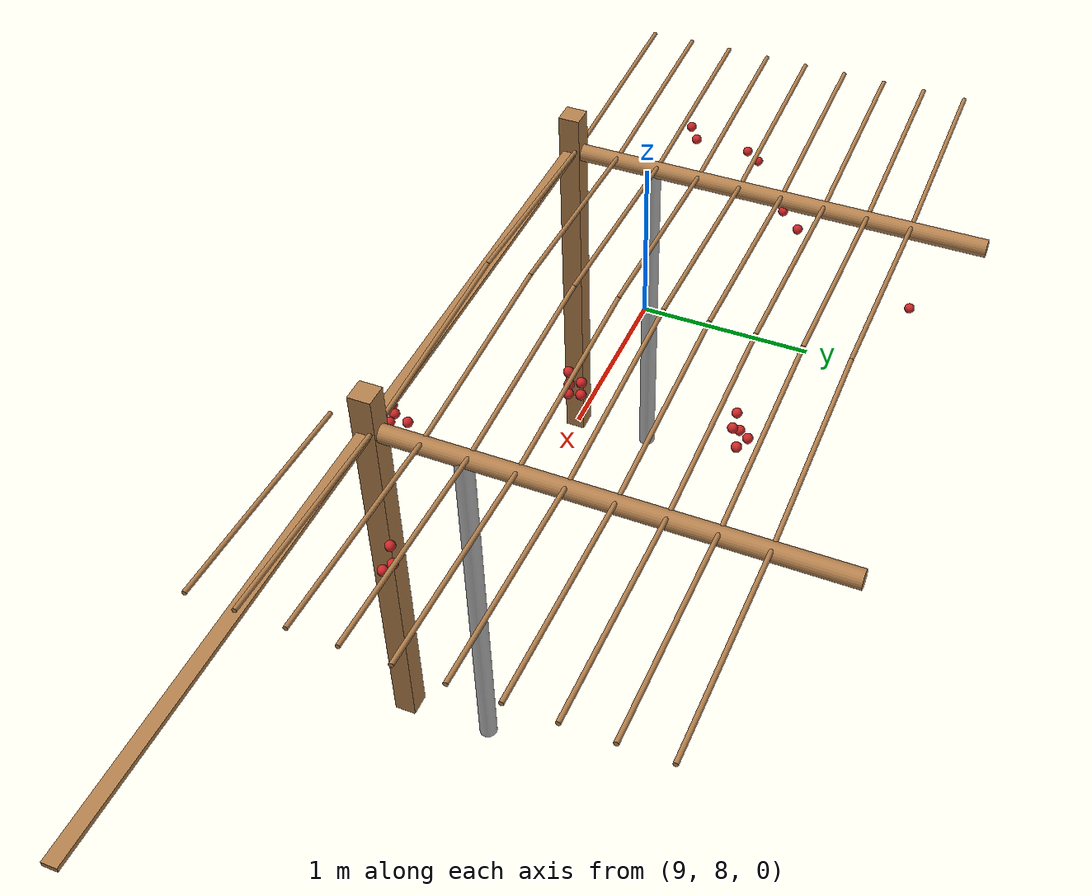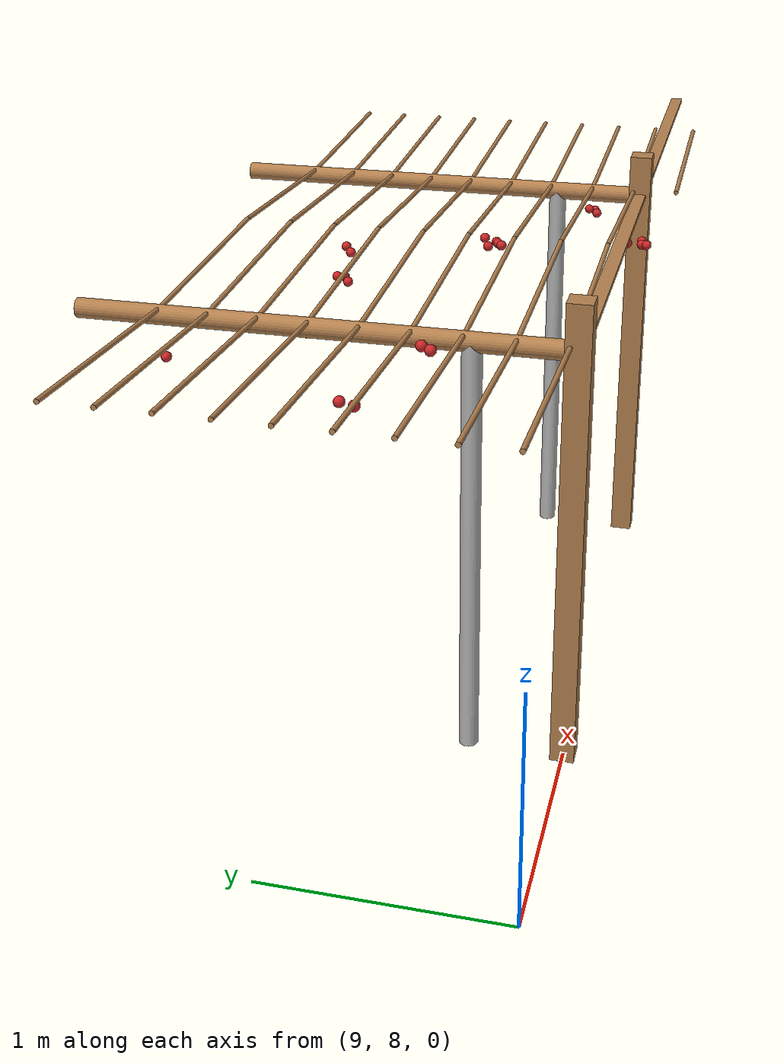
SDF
<sdf version="1.4">
 <model name="pergola">
  <include><name>post_59</name><pose>10.0 8.0 0 0 0 0</pose><uri>model://post</uri></include>
  <include><name>post_70</name><pose>12.0 8.0 0 0 0 0</pose><uri>model://post</uri></include>
  <link name="beam_59">
   <pose>11.0 8.0 1.81 0 0 0</pose>
   <collision name="collision"><geometry><box><size>2.0 0.06 0.02</size></box></geometry></collision>
   <visual name="visual">
    <geometry><box><size>2.0 0.06 0.02</size></box></geometry>
    <material><script><name>Gazebo/Wood</name></script></material>
   </visual>
   <inertial>
    <mass>5</mass>
    <inertia>
     <ixx>0.0016666666666666668</ixx>
     <ixy>0.0</ixy>
     <ixz>0.0</ixz>
     <iyy>1.6681666666666664</iyy>
     <iyz>0.0</iyz>
     <izz>1.6668333333333332</izz>
    </inertia>
   </inertial>
  </link>
  <link name="beam_70">
   <pose>13.0 8.0 1.81 0 0 0</pose>
   <collision name="collision"><geometry><box><size>2.0 0.06 0.02</size></box></geometry></collision>
   <visual name="visual">
    <geometry><box><size>2.0 0.06 0.02</size></box></geometry>
    <material><script><name>Gazebo/Wood</name></script></material>
   </visual>
   <inertial>
    <mass>5</mass>
    <inertia>
     <ixx>0.0016666666666666668</ixx>
     <ixy>0.0</ixy>
     <ixz>0.0</ixz>
     <iyy>1.6681666666666664</iyy>
     <iyz>0.0</iyz>
     <izz>1.6668333333333332</izz>
    </inertia>
   </inertial>
  </link>
  <include><name>tree_54</name><pose>10.0 8.4 0 0 0 0</pose><uri>model://tree_trunk</uri></include>
  <include><name>tree_64</name><pose>12.0 8.4 0 0 0 0</pose><uri>model://tree_trunk</uri></include>
  <link name="baseBranch_54">
   <pose>10.0 9.0 1.8 1.5707963267948966 0 0</pose>
   <collision name="collision">
    <geometry><cylinder><radius>0.04</radius><length>1.94</length></cylinder></geometry>
   </collision>
   <visual name="visual">
    <geometry><cylinder><radius>0.04</radius><length>1.94</length></cylinder></geometry>
    <material><script><name>Gazebo/WoodFloor</name></script></material>
   </visual>
   <inertial>
    <mass>10</mass>
    <inertia>
     <ixx>3.140333333333333</ixx>
     <ixy>0.0</ixy>
     <ixz>0.0</ixz>
     <iyy>3.140333333333333</iyy>
     <iyz>0.0</iyz>
     <izz>0.008</izz>
    </inertia>
   </inertial>
  </link>
  <link name="baseBranch_64">
   <pose>12.0 9.0 1.8 1.5707963267948966 0 0</pose>
   <collision name="collision">
    <geometry><cylinder><radius>0.04</radius><length>1.94</length></cylinder></geometry>
   </collision>
   <visual name="visual">
    <geometry><cylinder><radius>0.04</radius><length>1.94</length></cylinder></geometry>
    <material><script><name>Gazebo/WoodFloor</name></script></material>
   </visual>
   <inertial>
    <mass>10</mass>
    <inertia>
     <ixx>3.140333333333333</ixx>
     <ixy>0.0</ixy>
     <ixz>0.0</ixz>
     <iyy>3.140333333333333</iyy>
     <iyz>0.0</iyz>
     <izz>0.008</izz>
    </inertia>
   </inertial>
  </link>
  <link name="vine_881">
   <pose>9.5 8.03 1.85 0 -1.5208379310729538 0</pose>
   <collision name="collision">
    <geometry><cylinder><radius>0.01</radius><length>1.0012492197250393</length></cylinder></geometry>
   </collision>
   <visual name="visual">
    <geometry><cylinder><radius>0.01</radius><length>1.0012492197250393</length></cylinder></geometry>
    <material><script><name>Gazebo/WoodFloor</name></script></material>
   </visual>
   <inertial>
    <mass>5</mass>
    <inertia>
     <ixx>0.41783333333333345</ixx>
     <ixy>0.0</ixy>
     <ixz>0.0</ixz>
     <iyy>0.41783333333333345</iyy>
     <iyz>0.0</iyz>
     <izz>0.00025</izz>
    </inertia>
   </inertial>
  </link>
  <link name="vine_883">
   <pose>9.5 8.23 1.85 0 -1.5208379310729538 0</pose>
   <collision name="collision">
    <geometry><cylinder><radius>0.01</radius><length>1.0012492197250393</length></cylinder></geometry>
   </collision>
   <visual name="visual">
    <geometry><cylinder><radius>0.01</radius><length>1.0012492197250393</length></cylinder></geometry>
    <material><script><name>Gazebo/WoodFloor</name></script></material>
   </visual>
   <inertial>
    <mass>5</mass>
    <inertia>
     <ixx>0.41783333333333345</ixx>
     <ixy>0.0</ixy>
     <ixz>0.0</ixz>
     <iyy>0.41783333333333345</iyy>
     <iyz>0.0</iyz>
     <izz>0.00025</izz>
    </inertia>
   </inertial>
  </link>
  <link name="vine_885">
   <pose>9.5 8.43 1.85 0 -1.5208379310729538 0</pose>
   <collision name="collision">
    <geometry><cylinder><radius>0.01</radius><length>1.0012492197250393</length></cylinder></geometry>
   </collision>
   <visual name="visual">
    <geometry><cylinder><radius>0.01</radius><length>1.0012492197250393</length></cylinder></geometry>
    <material><script><name>Gazebo/WoodFloor</name></script></material>
   </visual>
   <inertial>
    <mass>5</mass>
    <inertia>
     <ixx>0.41783333333333345</ixx>
     <ixy>0.0</ixy>
     <ixz>0.0</ixz>
     <iyy>0.41783333333333345</iyy>
     <iyz>0.0</iyz>
     <izz>0.00025</izz>
    </inertia>
   </inertial>
  </link>
  <link name="vine_887">
   <pose>9.5 8.629999999999999 1.85 0 -1.5208379310729538 0</pose>
   <collision name="collision">
    <geometry><cylinder><radius>0.01</radius><length>1.0012492197250393</length></cylinder></geometry>
   </collision>
   <visual name="visual">
    <geometry><cylinder><radius>0.01</radius><length>1.0012492197250393</length></cylinder></geometry>
    <material><script><name>Gazebo/WoodFloor</name></script></material>
   </visual>
   <inertial>
    <mass>5</mass>
    <inertia>
     <ixx>0.41783333333333345</ixx>
     <ixy>0.0</ixy>
     <ixz>0.0</ixz>
     <iyy>0.41783333333333345</iyy>
     <iyz>0.0</iyz>
     <izz>0.00025</izz>
    </inertia>
   </inertial>
  </link>
  <link name="vine_889">
   <pose>9.5 8.83 1.85 0 -1.5208379310729538 0</pose>
   <collision name="collision">
    <geometry><cylinder><radius>0.01</radius><length>1.0012492197250393</length></cylinder></geometry>
   </collision>
   <visual name="visual">
    <geometry><cylinder><radius>0.01</radius><length>1.0012492197250393</length></cylinder></geometry>
    <material><script><name>Gazebo/WoodFloor</name></script></material>
   </visual>
   <inertial>
    <mass>5</mass>
    <inertia>
     <ixx>0.41783333333333345</ixx>
     <ixy>0.0</ixy>
     <ixz>0.0</ixz>
     <iyy>0.41783333333333345</iyy>
     <iyz>0.0</iyz>
     <izz>0.00025</izz>
    </inertia>
   </inertial>
  </link>
  <link name="vine_891">
   <pose>9.5 9.03 1.85 0 -1.5208379310729538 0</pose>
   <collision name="collision">
    <geometry><cylinder><radius>0.01</radius><length>1.0012492197250393</length></cylinder></geometry>
   </collision>
   <visual name="visual">
    <geometry><cylinder><radius>0.01</radius><length>1.0012492197250393</length></cylinder></geometry>
    <material><script><name>Gazebo/WoodFloor</name></script></material>
   </visual>
   <inertial>
    <mass>5</mass>
    <inertia>
     <ixx>0.41783333333333345</ixx>
     <ixy>0.0</ixy>
     <ixz>0.0</ixz>
     <iyy>0.41783333333333345</iyy>
     <iyz>0.0</iyz>
     <izz>0.00025</izz>
    </inertia>
   </inertial>
  </link>
  <link name="vine_893">
   <pose>9.5 9.23 1.85 0 -1.5208379310729538 0</pose>
   <collision name="collision">
    <geometry><cylinder><radius>0.01</radius><length>1.0012492197250393</length></cylinder></geometry>
   </collision>
   <visual name="visual">
    <geometry><cylinder><radius>0.01</radius><length>1.0012492197250393</length></cylinder></geometry>
    <material><script><name>Gazebo/WoodFloor</name></script></material>
   </visual>
   <inertial>
    <mass>5</mass>
    <inertia>
     <ixx>0.41783333333333345</ixx>
     <ixy>0.0</ixy>
     <ixz>0.0</ixz>
     <iyy>0.41783333333333345</iyy>
     <iyz>0.0</iyz>
     <izz>0.00025</izz>
    </inertia>
   </inertial>
  </link>
  <link name="vine_895">
   <pose>9.5 9.43 1.85 0 -1.5208379310729538 0</pose>
   <collision name="collision">
    <geometry><cylinder><radius>0.01</radius><length>1.0012492197250393</length></cylinder></geometry>
   </collision>
   <visual name="visual">
    <geometry><cylinder><radius>0.01</radius><length>1.0012492197250393</length></cylinder></geometry>
    <material><script><name>Gazebo/WoodFloor</name></script></material>
   </visual>
   <inertial>
    <mass>5</mass>
    <inertia>
     <ixx>0.41783333333333345</ixx>
     <ixy>0.0</ixy>
     <ixz>0.0</ixz>
     <iyy>0.41783333333333345</iyy>
     <iyz>0.0</iyz>
     <izz>0.00025</izz>
    </inertia>
   </inertial>
  </link>
  <link name="vine_897">
   <pose>9.5 9.63 1.85 0 -1.5208379310729538 0</pose>
   <collision name="collision">
    <geometry><cylinder><radius>0.01</radius><length>1.0012492197250393</length></cylinder></geometry>
   </collision>
   <visual name="visual">
    <geometry><cylinder><radius>0.01</radius><length>1.0012492197250393</length></cylinder></geometry>
    <material><script><name>Gazebo/WoodFloor</name></script></material>
   </visual>
   <inertial>
    <mass>5</mass>
    <inertia>
     <ixx>0.41783333333333345</ixx>
     <ixy>0.0</ixy>
     <ixz>0.0</ixz>
     <iyy>0.41783333333333345</iyy>
     <iyz>0.0</iyz>
     <izz>0.00025</izz>
    </inertia>
   </inertial>
  </link>
  <link name="vine_1080">
   <pose>10.5 8.03 1.85 0 1.5208379310729538 0</pose>
   <collision name="collision">
    <geometry><cylinder><radius>0.01</radius><length>1.0012492197250393</length></cylinder></geometry>
   </collision>
   <visual name="visual">
    <geometry><cylinder><radius>0.01</radius><length>1.0012492197250393</length></cylinder></geometry>
    <material><script><name>Gazebo/WoodFloor</name></script></material>
   </visual>
   <inertial>
    <mass>5</mass>
    <inertia>
     <ixx>0.41783333333333345</ixx>
     <ixy>0.0</ixy>
     <ixz>0.0</ixz>
     <iyy>0.41783333333333345</iyy>
     <iyz>0.0</iyz>
     <izz>0.00025</izz>
    </inertia>
   </inertial>
  </link>
  <link name="vine_1081">
   <pose>11.5 8.03 1.85 0 -1.5208379310729538 0</pose>
   <collision name="collision">
    <geometry><cylinder><radius>0.01</radius><length>1.0012492197250393</length></cylinder></geometry>
   </collision>
   <visual name="visual">
    <geometry><cylinder><radius>0.01</radius><length>1.0012492197250393</length></cylinder></geometry>
    <material><script><name>Gazebo/WoodFloor</name></script></material>
   </visual>
   <inertial>
    <mass>5</mass>
    <inertia>
     <ixx>0.41783333333333345</ixx>
     <ixy>0.0</ixy>
     <ixz>0.0</ixz>
     <iyy>0.41783333333333345</iyy>
     <iyz>0.0</iyz>
     <izz>0.00025</izz>
    </inertia>
   </inertial>
  </link>
  <link name="vine_1082">
   <pose>10.5 8.23 1.85 0 1.5208379310729538 0</pose>
   <collision name="collision">
    <geometry><cylinder><radius>0.01</radius><length>1.0012492197250393</length></cylinder></geometry>
   </collision>
   <visual name="visual">
    <geometry><cylinder><radius>0.01</radius><length>1.0012492197250393</length></cylinder></geometry>
    <material><script><name>Gazebo/WoodFloor</name></script></material>
   </visual>
   <inertial>
    <mass>5</mass>
    <inertia>
     <ixx>0.41783333333333345</ixx>
     <ixy>0.0</ixy>
     <ixz>0.0</ixz>
     <iyy>0.41783333333333345</iyy>
     <iyz>0.0</iyz>
     <izz>0.00025</izz>
    </inertia>
   </inertial>
  </link>
  <link name="vine_1083">
   <pose>11.5 8.23 1.85 0 -1.5208379310729538 0</pose>
   <collision name="collision">
    <geometry><cylinder><radius>0.01</radius><length>1.0012492197250393</length></cylinder></geometry>
   </collision>
   <visual name="visual">
    <geometry><cylinder><radius>0.01</radius><length>1.0012492197250393</length></cylinder></geometry>
    <material><script><name>Gazebo/WoodFloor</name></script></material>
   </visual>
   <inertial>
    <mass>5</mass>
    <inertia>
     <ixx>0.41783333333333345</ixx>
     <ixy>0.0</ixy>
     <ixz>0.0</ixz>
     <iyy>0.41783333333333345</iyy>
     <iyz>0.0</iyz>
     <izz>0.00025</izz>
    </inertia>
   </inertial>
  </link>
  <link name="vine_1084">
   <pose>10.5 8.43 1.85 0 1.5208379310729538 0</pose>
   <collision name="collision">
    <geometry><cylinder><radius>0.01</radius><length>1.0012492197250393</length></cylinder></geometry>
   </collision>
   <visual name="visual">
    <geometry><cylinder><radius>0.01</radius><length>1.0012492197250393</length></cylinder></geometry>
    <material><script><name>Gazebo/WoodFloor</name></script></material>
   </visual>
   <inertial>
    <mass>5</mass>
    <inertia>
     <ixx>0.41783333333333345</ixx>
     <ixy>0.0</ixy>
     <ixz>0.0</ixz>
     <iyy>0.41783333333333345</iyy>
     <iyz>0.0</iyz>
     <izz>0.00025</izz>
    </inertia>
   </inertial>
  </link>
  <link name="vine_1085">
   <pose>11.5 8.43 1.85 0 -1.5208379310729538 0</pose>
   <collision name="collision">
    <geometry><cylinder><radius>0.01</radius><length>1.0012492197250393</length></cylinder></geometry>
   </collision>
   <visual name="visual">
    <geometry><cylinder><radius>0.01</radius><length>1.0012492197250393</length></cylinder></geometry>
    <material><script><name>Gazebo/WoodFloor</name></script></material>
   </visual>
   <inertial>
    <mass>5</mass>
    <inertia>
     <ixx>0.41783333333333345</ixx>
     <ixy>0.0</ixy>
     <ixz>0.0</ixz>
     <iyy>0.41783333333333345</iyy>
     <iyz>0.0</iyz>
     <izz>0.00025</izz>
    </inertia>
   </inertial>
  </link>
  <link name="vine_1086">
   <pose>10.5 8.629999999999999 1.85 0 1.5208379310729538 0</pose>
   <collision name="collision">
    <geometry><cylinder><radius>0.01</radius><length>1.0012492197250393</length></cylinder></geometry>
   </collision>
   <visual name="visual">
    <geometry><cylinder><radius>0.01</radius><length>1.0012492197250393</length></cylinder></geometry>
    <material><script><name>Gazebo/WoodFloor</name></script></material>
   </visual>
   <inertial>
    <mass>5</mass>
    <inertia>
     <ixx>0.41783333333333345</ixx>
     <ixy>0.0</ixy>
     <ixz>0.0</ixz>
     <iyy>0.41783333333333345</iyy>
     <iyz>0.0</iyz>
     <izz>0.00025</izz>
    </inertia>
   </inertial>
  </link>
  <link name="vine_1087">
   <pose>11.5 8.629999999999999 1.85 0 -1.5208379310729538 0</pose>
   <collision name="collision">
    <geometry><cylinder><radius>0.01</radius><length>1.0012492197250393</length></cylinder></geometry>
   </collision>
   <visual name="visual">
    <geometry><cylinder><radius>0.01</radius><length>1.0012492197250393</length></cylinder></geometry>
    <material><script><name>Gazebo/WoodFloor</name></script></material>
   </visual>
   <inertial>
    <mass>5</mass>
    <inertia>
     <ixx>0.41783333333333345</ixx>
     <ixy>0.0</ixy>
     <ixz>0.0</ixz>
     <iyy>0.41783333333333345</iyy>
     <iyz>0.0</iyz>
     <izz>0.00025</izz>
    </inertia>
   </inertial>
  </link>
  <link name="vine_1088">
   <pose>10.5 8.83 1.85 0 1.5208379310729538 0</pose>
   <collision name="collision">
    <geometry><cylinder><radius>0.01</radius><length>1.0012492197250393</length></cylinder></geometry>
   </collision>
   <visual name="visual">
    <geometry><cylinder><radius>0.01</radius><length>1.0012492197250393</length></cylinder></geometry>
    <material><script><name>Gazebo/WoodFloor</name></script></material>
   </visual>
   <inertial>
    <mass>5</mass>
    <inertia>
     <ixx>0.41783333333333345</ixx>
     <ixy>0.0</ixy>
     <ixz>0.0</ixz>
     <iyy>0.41783333333333345</iyy>
     <iyz>0.0</iyz>
     <izz>0.00025</izz>
    </inertia>
   </inertial>
  </link>
  <link name="vine_1089">
   <pose>11.5 8.83 1.85 0 -1.5208379310729538 0</pose>
   <collision name="collision">
    <geometry><cylinder><radius>0.01</radius><length>1.0012492197250393</length></cylinder></geometry>
   </collision>
   <visual name="visual">
    <geometry><cylinder><radius>0.01</radius><length>1.0012492197250393</length></cylinder></geometry>
    <material><script><name>Gazebo/WoodFloor</name></script></material>
   </visual>
   <inertial>
    <mass>5</mass>
    <inertia>
     <ixx>0.41783333333333345</ixx>
     <ixy>0.0</ixy>
     <ixz>0.0</ixz>
     <iyy>0.41783333333333345</iyy>
     <iyz>0.0</iyz>
     <izz>0.00025</izz>
    </inertia>
   </inertial>
  </link>
  <link name="vine_1090">
   <pose>10.5 9.03 1.85 0 1.5208379310729538 0</pose>
   <collision name="collision">
    <geometry><cylinder><radius>0.01</radius><length>1.0012492197250393</length></cylinder></geometry>
   </collision>
   <visual name="visual">
    <geometry><cylinder><radius>0.01</radius><length>1.0012492197250393</length></cylinder></geometry>
    <material><script><name>Gazebo/WoodFloor</name></script></material>
   </visual>
   <inertial>
    <mass>5</mass>
    <inertia>
     <ixx>0.41783333333333345</ixx>
     <ixy>0.0</ixy>
     <ixz>0.0</ixz>
     <iyy>0.41783333333333345</iyy>
     <iyz>0.0</iyz>
     <izz>0.00025</izz>
    </inertia>
   </inertial>
  </link>
  <link name="vine_1091">
   <pose>11.5 9.03 1.85 0 -1.5208379310729538 0</pose>
   <collision name="collision">
    <geometry><cylinder><radius>0.01</radius><length>1.0012492197250393</length></cylinder></geometry>
   </collision>
   <visual name="visual">
    <geometry><cylinder><radius>0.01</radius><length>1.0012492197250393</length></cylinder></geometry>
    <material><script><name>Gazebo/WoodFloor</name></script></material>
   </visual>
   <inertial>
    <mass>5</mass>
    <inertia>
     <ixx>0.41783333333333345</ixx>
     <ixy>0.0</ixy>
     <ixz>0.0</ixz>
     <iyy>0.41783333333333345</iyy>
     <iyz>0.0</iyz>
     <izz>0.00025</izz>
    </inertia>
   </inertial>
  </link>
  <link name="vine_1092">
   <pose>10.5 9.23 1.85 0 1.5208379310729538 0</pose>
   <collision name="collision">
    <geometry><cylinder><radius>0.01</radius><length>1.0012492197250393</length></cylinder></geometry>
   </collision>
   <visual name="visual">
    <geometry><cylinder><radius>0.01</radius><length>1.0012492197250393</length></cylinder></geometry>
    <material><script><name>Gazebo/WoodFloor</name></script></material>
   </visual>
   <inertial>
    <mass>5</mass>
    <inertia>
     <ixx>0.41783333333333345</ixx>
     <ixy>0.0</ixy>
     <ixz>0.0</ixz>
     <iyy>0.41783333333333345</iyy>
     <iyz>0.0</iyz>
     <izz>0.00025</izz>
    </inertia>
   </inertial>
  </link>
  <link name="vine_1093">
   <pose>11.5 9.23 1.85 0 -1.5208379310729538 0</pose>
   <collision name="collision">
    <geometry><cylinder><radius>0.01</radius><length>1.0012492197250393</length></cylinder></geometry>
   </collision>
   <visual name="visual">
    <geometry><cylinder><radius>0.01</radius><length>1.0012492197250393</length></cylinder></geometry>
    <material><script><name>Gazebo/WoodFloor</name></script></material>
   </visual>
   <inertial>
    <mass>5</mass>
    <inertia>
     <ixx>0.41783333333333345</ixx>
     <ixy>0.0</ixy>
     <ixz>0.0</ixz>
     <iyy>0.41783333333333345</iyy>
     <iyz>0.0</iyz>
     <izz>0.00025</izz>
    </inertia>
   </inertial>
  </link>
  <link name="vine_1094">
   <pose>10.5 9.43 1.85 0 1.5208379310729538 0</pose>
   <collision name="collision">
    <geometry><cylinder><radius>0.01</radius><length>1.0012492197250393</length></cylinder></geometry>
   </collision>
   <visual name="visual">
    <geometry><cylinder><radius>0.01</radius><length>1.0012492197250393</length></cylinder></geometry>
    <material><script><name>Gazebo/WoodFloor</name></script></material>
   </visual>
   <inertial>
    <mass>5</mass>
    <inertia>
     <ixx>0.41783333333333345</ixx>
     <ixy>0.0</ixy>
     <ixz>0.0</ixz>
     <iyy>0.41783333333333345</iyy>
     <iyz>0.0</iyz>
     <izz>0.00025</izz>
    </inertia>
   </inertial>
  </link>
  <link name="vine_1095">
   <pose>11.5 9.43 1.85 0 -1.5208379310729538 0</pose>
   <collision name="collision">
    <geometry><cylinder><radius>0.01</radius><length>1.0012492197250393</length></cylinder></geometry>
   </collision>
   <visual name="visual">
    <geometry><cylinder><radius>0.01</radius><length>1.0012492197250393</length></cylinder></geometry>
    <material><script><name>Gazebo/WoodFloor</name></script></material>
   </visual>
   <inertial>
    <mass>5</mass>
    <inertia>
     <ixx>0.41783333333333345</ixx>
     <ixy>0.0</ixy>
     <ixz>0.0</ixz>
     <iyy>0.41783333333333345</iyy>
     <iyz>0.0</iyz>
     <izz>0.00025</izz>
    </inertia>
   </inertial>
  </link>
  <link name="vine_1096">
   <pose>10.5 9.63 1.85 0 1.5208379310729538 0</pose>
   <collision name="collision">
    <geometry><cylinder><radius>0.01</radius><length>1.0012492197250393</length></cylinder></geometry>
   </collision>
   <visual name="visual">
    <geometry><cylinder><radius>0.01</radius><length>1.0012492197250393</length></cylinder></geometry>
    <material><script><name>Gazebo/WoodFloor</name></script></material>
   </visual>
   <inertial>
    <mass>5</mass>
    <inertia>
     <ixx>0.41783333333333345</ixx>
     <ixy>0.0</ixy>
     <ixz>0.0</ixz>
     <iyy>0.41783333333333345</iyy>
     <iyz>0.0</iyz>
     <izz>0.00025</izz>
    </inertia>
   </inertial>
  </link>
  <link name="vine_1097">
   <pose>11.5 9.63 1.85 0 -1.5208379310729538 0</pose>
   <collision name="collision">
    <geometry><cylinder><radius>0.01</radius><length>1.0012492197250393</length></cylinder></geometry>
   </collision>
   <visual name="visual">
    <geometry><cylinder><radius>0.01</radius><length>1.0012492197250393</length></cylinder></geometry>
    <material><script><name>Gazebo/WoodFloor</name></script></material>
   </visual>
   <inertial>
    <mass>5</mass>
    <inertia>
     <ixx>0.41783333333333345</ixx>
     <ixy>0.0</ixy>
     <ixz>0.0</ixz>
     <iyy>0.41783333333333345</iyy>
     <iyz>0.0</iyz>
     <izz>0.00025</izz>
    </inertia>
   </inertial>
  </link>
  <link name="vine_1278">
   <pose>12.5 7.830000000000001 1.85 0 1.5208379310729538 0</pose>
   <collision name="collision">
    <geometry><cylinder><radius>0.01</radius><length>1.0012492197250393</length></cylinder></geometry>
   </collision>
   <visual name="visual">
    <geometry><cylinder><radius>0.01</radius><length>1.0012492197250393</length></cylinder></geometry>
    <material><script><name>Gazebo/WoodFloor</name></script></material>
   </visual>
   <inertial>
    <mass>5</mass>
    <inertia>
     <ixx>0.41783333333333345</ixx>
     <ixy>0.0</ixy>
     <ixz>0.0</ixz>
     <iyy>0.41783333333333345</iyy>
     <iyz>0.0</iyz>
     <izz>0.00025</izz>
    </inertia>
   </inertial>
  </link>
  <link name="vine_1280">
   <pose>12.5 8.03 1.85 0 1.5208379310729538 0</pose>
   <collision name="collision">
    <geometry><cylinder><radius>0.01</radius><length>1.0012492197250393</length></cylinder></geometry>
   </collision>
   <visual name="visual">
    <geometry><cylinder><radius>0.01</radius><length>1.0012492197250393</length></cylinder></geometry>
    <material><script><name>Gazebo/WoodFloor</name></script></material>
   </visual>
   <inertial>
    <mass>5</mass>
    <inertia>
     <ixx>0.41783333333333345</ixx>
     <ixy>0.0</ixy>
     <ixz>0.0</ixz>
     <iyy>0.41783333333333345</iyy>
     <iyz>0.0</iyz>
     <izz>0.00025</izz>
    </inertia>
   </inertial>
  </link>
  <link name="vine_1282">
   <pose>12.5 8.23 1.85 0 1.5208379310729538 0</pose>
   <collision name="collision">
    <geometry><cylinder><radius>0.01</radius><length>1.0012492197250393</length></cylinder></geometry>
   </collision>
   <visual name="visual">
    <geometry><cylinder><radius>0.01</radius><length>1.0012492197250393</length></cylinder></geometry>
    <material><script><name>Gazebo/WoodFloor</name></script></material>
   </visual>
   <inertial>
    <mass>5</mass>
    <inertia>
     <ixx>0.41783333333333345</ixx>
     <ixy>0.0</ixy>
     <ixz>0.0</ixz>
     <iyy>0.41783333333333345</iyy>
     <iyz>0.0</iyz>
     <izz>0.00025</izz>
    </inertia>
   </inertial>
  </link>
  <link name="vine_1284">
   <pose>12.5 8.43 1.85 0 1.5208379310729538 0</pose>
   <collision name="collision">
    <geometry><cylinder><radius>0.01</radius><length>1.0012492197250393</length></cylinder></geometry>
   </collision>
   <visual name="visual">
    <geometry><cylinder><radius>0.01</radius><length>1.0012492197250393</length></cylinder></geometry>
    <material><script><name>Gazebo/WoodFloor</name></script></material>
   </visual>
   <inertial>
    <mass>5</mass>
    <inertia>
     <ixx>0.41783333333333345</ixx>
     <ixy>0.0</ixy>
     <ixz>0.0</ixz>
     <iyy>0.41783333333333345</iyy>
     <iyz>0.0</iyz>
     <izz>0.00025</izz>
    </inertia>
   </inertial>
  </link>
  <link name="vine_1286">
   <pose>12.5 8.629999999999999 1.85 0 1.5208379310729538 0</pose>
   <collision name="collision">
    <geometry><cylinder><radius>0.01</radius><length>1.0012492197250393</length></cylinder></geometry>
   </collision>
   <visual name="visual">
    <geometry><cylinder><radius>0.01</radius><length>1.0012492197250393</length></cylinder></geometry>
    <material><script><name>Gazebo/WoodFloor</name></script></material>
   </visual>
   <inertial>
    <mass>5</mass>
    <inertia>
     <ixx>0.41783333333333345</ixx>
     <ixy>0.0</ixy>
     <ixz>0.0</ixz>
     <iyy>0.41783333333333345</iyy>
     <iyz>0.0</iyz>
     <izz>0.00025</izz>
    </inertia>
   </inertial>
  </link>
  <link name="vine_1288">
   <pose>12.5 8.83 1.85 0 1.5208379310729538 0</pose>
   <collision name="collision">
    <geometry><cylinder><radius>0.01</radius><length>1.0012492197250393</length></cylinder></geometry>
   </collision>
   <visual name="visual">
    <geometry><cylinder><radius>0.01</radius><length>1.0012492197250393</length></cylinder></geometry>
    <material><script><name>Gazebo/WoodFloor</name></script></material>
   </visual>
   <inertial>
    <mass>5</mass>
    <inertia>
     <ixx>0.41783333333333345</ixx>
     <ixy>0.0</ixy>
     <ixz>0.0</ixz>
     <iyy>0.41783333333333345</iyy>
     <iyz>0.0</iyz>
     <izz>0.00025</izz>
    </inertia>
   </inertial>
  </link>
  <link name="vine_1290">
   <pose>12.5 9.03 1.85 0 1.5208379310729538 0</pose>
   <collision name="collision">
    <geometry><cylinder><radius>0.01</radius><length>1.0012492197250393</length></cylinder></geometry>
   </collision>
   <visual name="visual">
    <geometry><cylinder><radius>0.01</radius><length>1.0012492197250393</length></cylinder></geometry>
    <material><script><name>Gazebo/WoodFloor</name></script></material>
   </visual>
   <inertial>
    <mass>5</mass>
    <inertia>
     <ixx>0.41783333333333345</ixx>
     <ixy>0.0</ixy>
     <ixz>0.0</ixz>
     <iyy>0.41783333333333345</iyy>
     <iyz>0.0</iyz>
     <izz>0.00025</izz>
    </inertia>
   </inertial>
  </link>
  <link name="vine_1292">
   <pose>12.5 9.23 1.85 0 1.5208379310729538 0</pose>
   <collision name="collision">
    <geometry><cylinder><radius>0.01</radius><length>1.0012492197250393</length></cylinder></geometry>
   </collision>
   <visual name="visual">
    <geometry><cylinder><radius>0.01</radius><length>1.0012492197250393</length></cylinder></geometry>
    <material><script><name>Gazebo/WoodFloor</name></script></material>
   </visual>
   <inertial>
    <mass>5</mass>
    <inertia>
     <ixx>0.41783333333333345</ixx>
     <ixy>0.0</ixy>
     <ixz>0.0</ixz>
     <iyy>0.41783333333333345</iyy>
     <iyz>0.0</iyz>
     <izz>0.00025</izz>
    </inertia>
   </inertial>
  </link>
  <link name="vine_1294">
   <pose>12.5 9.43 1.85 0 1.5208379310729538 0</pose>
   <collision name="collision">
    <geometry><cylinder><radius>0.01</radius><length>1.0012492197250393</length></cylinder></geometry>
   </collision>
   <visual name="visual">
    <geometry><cylinder><radius>0.01</radius><length>1.0012492197250393</length></cylinder></geometry>
    <material><script><name>Gazebo/WoodFloor</name></script></material>
   </visual>
   <inertial>
    <mass>5</mass>
    <inertia>
     <ixx>0.41783333333333345</ixx>
     <ixy>0.0</ixy>
     <ixz>0.0</ixz>
     <iyy>0.41783333333333345</iyy>
     <iyz>0.0</iyz>
     <izz>0.00025</izz>
    </inertia>
   </inertial>
  </link>
  <link name="vine_1296">
   <pose>12.5 9.63 1.85 0 1.5208379310729538 0</pose>
   <collision name="collision">
    <geometry><cylinder><radius>0.01</radius><length>1.0012492197250393</length></cylinder></geometry>
   </collision>
   <visual name="visual">
    <geometry><cylinder><radius>0.01</radius><length>1.0012492197250393</length></cylinder></geometry>
    <material><script><name>Gazebo/WoodFloor</name></script></material>
   </visual>
   <inertial>
    <mass>5</mass>
    <inertia>
     <ixx>0.41783333333333345</ixx>
     <ixy>0.0</ixy>
     <ixz>0.0</ixz>
     <iyy>0.41783333333333345</iyy>
     <iyz>0.0</iyz>
     <izz>0.00025</izz>
    </inertia>
   </inertial>
  </link>
  <link name="fruit_5">
   <pose>9.71094132269418 8.487244666140725 1.8739420687124273 0 0 0</pose>
   <collision name="fruit_collision_5"><geometry><sphere><radius>0.022</radius></sphere></geometry></collision>
   <visual name="visual">
    <geometry><sphere><radius>0.022</radius></sphere></geometry>
    <material><script><name>Gazebo/Red</name></script></material>
   </visual>
   <inertial>
    <mass>0.05</mass>
    <inertia>
     <ixx>9.679999999999999e-06</ixx>
     <ixy>0.0</ixy>
     <ixz>0.0</ixz>
     <iyy>9.679999999999999e-06</iyy>
     <iyz>0.0</iyz>
     <izz>9.679999999999999e-06</izz>
    </inertia>
   </inertial>
   <sensor name="fruit_contact_5" type="contact">
    <contact><collision>fruit_collision_5</collision></contact>
   </sensor>
  </link>
  <link name="fruit_7">
   <pose>11.314718443976039 9.25295561248533 1.6437288051092935 0 0 0</pose>
   <collision name="fruit_collision_7"><geometry><sphere><radius>0.022</radius></sphere></geometry></collision>
   <visual name="visual">
    <geometry><sphere><radius>0.022</radius></sphere></geometry>
    <material><script><name>Gazebo/Red</name></script></material>
   </visual>
   <inertial>
    <mass>0.05</mass>
    <inertia>
     <ixx>9.679999999999999e-06</ixx>
     <ixy>0.0</ixy>
     <ixz>0.0</ixz>
     <iyy>9.679999999999999e-06</iyy>
     <iyz>0.0</iyz>
     <izz>9.679999999999999e-06</izz>
    </inertia>
   </inertial>
   <sensor name="fruit_contact_7" type="contact">
    <contact><collision>fruit_collision_7</collision></contact>
   </sensor>
  </link>
  <link name="fruit_31">
   <pose>12.34076119448819 8.246339641714709 1.5910024857855316 0 0 0</pose>
   <collision name="fruit_collision_31"><geometry><sphere><radius>0.022</radius></sphere></geometry></collision>
   <visual name="visual">
    <geometry><sphere><radius>0.022</radius></sphere></geometry>
    <material><script><name>Gazebo/Red</name></script></material>
   </visual>
   <inertial>
    <mass>0.05</mass>
    <inertia>
     <ixx>9.679999999999999e-06</ixx>
     <ixy>0.0</ixy>
     <ixz>0.0</ixz>
     <iyy>9.679999999999999e-06</iyy>
     <iyz>0.0</iyz>
     <izz>9.679999999999999e-06</izz>
    </inertia>
   </inertial>
   <sensor name="fruit_contact_31" type="contact">
    <contact><collision>fruit_collision_31</collision></contact>
   </sensor>
  </link>
  <link name="fruit_86">
   <pose>11.337614536576279 8.549587051228876 1.723235285632939 0 0 0</pose>
   <collision name="fruit_collision_86"><geometry><sphere><radius>0.022</radius></sphere></geometry></collision>
   <visual name="visual">
    <geometry><sphere><radius>0.022</radius></sphere></geometry>
    <material><script><name>Gazebo/Red</name></script></material>
   </visual>
   <inertial>
    <mass>0.05</mass>
    <inertia>
     <ixx>9.679999999999999e-06</ixx>
     <ixy>0.0</ixy>
     <ixz>0.0</ixz>
     <iyy>9.679999999999999e-06</iyy>
     <iyz>0.0</iyz>
     <izz>9.679999999999999e-06</izz>
    </inertia>
   </inertial>
   <sensor name="fruit_contact_86" type="contact">
    <contact><collision>fruit_collision_86</collision></contact>
   </sensor>
  </link>
  <link name="fruit_104">
   <pose>11.147860342598925 9.21953751873261 1.5616684843680244 0 0 0</pose>
   <collision name="fruit_collision_104"><geometry><sphere><radius>0.022</radius></sphere></geometry></collision>
   <visual name="visual">
    <geometry><sphere><radius>0.022</radius></sphere></geometry>
    <material><script><name>Gazebo/Red</name></script></material>
   </visual>
   <inertial>
    <mass>0.05</mass>
    <inertia>
     <ixx>9.679999999999999e-06</ixx>
     <ixy>0.0</ixy>
     <ixz>0.0</ixz>
     <iyy>9.679999999999999e-06</iyy>
     <iyz>0.0</iyz>
     <izz>9.679999999999999e-06</izz>
    </inertia>
   </inertial>
   <sensor name="fruit_contact_104" type="contact">
    <contact><collision>fruit_collision_104</collision></contact>
   </sensor>
  </link>
  <link name="fruit_124">
   <pose>11.718233835531016 7.930526222616591 1.6470395635216852 0 0 0</pose>
   <collision name="fruit_collision_124"><geometry><sphere><radius>0.022</radius></sphere></geometry></collision>
   <visual name="visual">
    <geometry><sphere><radius>0.022</radius></sphere></geometry>
    <material><script><name>Gazebo/Red</name></script></material>
   </visual>
   <inertial>
    <mass>0.05</mass>
    <inertia>
     <ixx>9.679999999999999e-06</ixx>
     <ixy>0.0</ixy>
     <ixz>0.0</ixz>
     <iyy>9.679999999999999e-06</iyy>
     <iyz>0.0</iyz>
     <izz>9.679999999999999e-06</izz>
    </inertia>
   </inertial>
   <sensor name="fruit_contact_124" type="contact">
    <contact><collision>fruit_collision_124</collision></contact>
   </sensor>
  </link>
  <link name="fruit_241">
   <pose>9.564449455795717 8.7273423056811 1.7008155027347014 0 0 0</pose>
   <collision name="fruit_collision_241"><geometry><sphere><radius>0.022</radius></sphere></geometry></collision>
   <visual name="visual">
    <geometry><sphere><radius>0.022</radius></sphere></geometry>
    <material><script><name>Gazebo/Red</name></script></material>
   </visual>
   <inertial>
    <mass>0.05</mass>
    <inertia>
     <ixx>9.679999999999999e-06</ixx>
     <ixy>0.0</ixy>
     <ixz>0.0</ixz>
     <iyy>9.679999999999999e-06</iyy>
     <iyz>0.0</iyz>
     <izz>9.679999999999999e-06</izz>
    </inertia>
   </inertial>
   <sensor name="fruit_contact_241" type="contact">
    <contact><collision>fruit_collision_241</collision></contact>
   </sensor>
  </link>
  <link name="fruit_256">
   <pose>10.202778157441328 9.70964242498828 1.5329251789522171 0 0 0</pose>
   <collision name="fruit_collision_256"><geometry><sphere><radius>0.022</radius></sphere></geometry></collision>
   <visual name="visual">
    <geometry><sphere><radius>0.022</radius></sphere></geometry>
    <material><script><name>Gazebo/Red</name></script></material>
   </visual>
   <inertial>
    <mass>0.05</mass>
    <inertia>
     <ixx>9.679999999999999e-06</ixx>
     <ixy>0.0</ixy>
     <ixz>0.0</ixz>
     <iyy>9.679999999999999e-06</iyy>
     <iyz>0.0</iyz>
     <izz>9.679999999999999e-06</izz>
    </inertia>
   </inertial>
   <sensor name="fruit_contact_256" type="contact">
    <contact><collision>fruit_collision_256</collision></contact>
   </sensor>
  </link>
  <link name="fruit_270">
   <pose>10.034170189711821 9.04962909373363 1.765015044030652 0 0 0</pose>
   <collision name="fruit_collision_270"><geometry><sphere><radius>0.022</radius></sphere></geometry></collision>
   <visual name="visual">
    <geometry><sphere><radius>0.022</radius></sphere></geometry>
    <material><script><name>Gazebo/Red</name></script></material>
   </visual>
   <inertial>
    <mass>0.05</mass>
    <inertia>
     <ixx>9.679999999999999e-06</ixx>
     <ixy>0.0</ixy>
     <ixz>0.0</ixz>
     <iyy>9.679999999999999e-06</iyy>
     <iyz>0.0</iyz>
     <izz>9.679999999999999e-06</izz>
    </inertia>
   </inertial>
   <sensor name="fruit_contact_270" type="contact">
    <contact><collision>fruit_collision_270</collision></contact>
   </sensor>
  </link>
  <link name="fruit_361">
   <pose>11.361642493213637 8.61547758126349 1.7065322490782235 0 0 0</pose>
   <collision name="fruit_collision_361"><geometry><sphere><radius>0.022</radius></sphere></geometry></collision>
   <visual name="visual">
    <geometry><sphere><radius>0.022</radius></sphere></geometry>
    <material><script><name>Gazebo/Red</name></script></material>
   </visual>
   <inertial>
    <mass>0.05</mass>
    <inertia>
     <ixx>9.679999999999999e-06</ixx>
     <ixy>0.0</ixy>
     <ixz>0.0</ixz>
     <iyy>9.679999999999999e-06</iyy>
     <iyz>0.0</iyz>
     <izz>9.679999999999999e-06</izz>
    </inertia>
   </inertial>
   <sensor name="fruit_contact_361" type="contact">
    <contact><collision>fruit_collision_361</collision></contact>
   </sensor>
  </link>
  <link name="fruit_386">
   <pose>12.414739845904325 8.295621780518362 1.5886991194823525 0 0 0</pose>
   <collision name="fruit_collision_386"><geometry><sphere><radius>0.022</radius></sphere></geometry></collision>
   <visual name="visual">
    <geometry><sphere><radius>0.022</radius></sphere></geometry>
    <material><script><name>Gazebo/Red</name></script></material>
   </visual>
   <inertial>
    <mass>0.05</mass>
    <inertia>
     <ixx>9.679999999999999e-06</ixx>
     <ixy>0.0</ixy>
     <ixz>0.0</ixz>
     <iyy>9.679999999999999e-06</iyy>
     <iyz>0.0</iyz>
     <izz>9.679999999999999e-06</izz>
    </inertia>
   </inertial>
   <sensor name="fruit_contact_386" type="contact">
    <contact><collision>fruit_collision_386</collision></contact>
   </sensor>
  </link>
  <link name="fruit_415">
   <pose>11.798910592015043 7.960847439806855 1.6382817704093202 0 0 0</pose>
   <collision name="fruit_collision_415"><geometry><sphere><radius>0.022</radius></sphere></geometry></collision>
   <visual name="visual">
    <geometry><sphere><radius>0.022</radius></sphere></geometry>
    <material><script><name>Gazebo/Red</name></script></material>
   </visual>
   <inertial>
    <mass>0.05</mass>
    <inertia>
     <ixx>9.679999999999999e-06</ixx>
     <ixy>0.0</ixy>
     <ixz>0.0</ixz>
     <iyy>9.679999999999999e-06</iyy>
     <iyz>0.0</iyz>
     <izz>9.679999999999999e-06</izz>
    </inertia>
   </inertial>
   <sensor name="fruit_contact_415" type="contact">
    <contact><collision>fruit_collision_415</collision></contact>
   </sensor>
  </link>
  <link name="fruit_504">
   <pose>11.253945640751969 9.302605187202017 1.5446772999240894 0 0 0</pose>
   <collision name="fruit_collision_504"><geometry><sphere><radius>0.022</radius></sphere></geometry></collision>
   <visual name="visual">
    <geometry><sphere><radius>0.022</radius></sphere></geometry>
    <material><script><name>Gazebo/Red</name></script></material>
   </visual>
   <inertial>
    <mass>0.05</mass>
    <inertia>
     <ixx>9.679999999999999e-06</ixx>
     <ixy>0.0</ixy>
     <ixz>0.0</ixz>
     <iyy>9.679999999999999e-06</iyy>
     <iyz>0.0</iyz>
     <izz>9.679999999999999e-06</izz>
    </inertia>
   </inertial>
   <sensor name="fruit_contact_504" type="contact">
    <contact><collision>fruit_collision_504</collision></contact>
   </sensor>
  </link>
  <link name="fruit_537">
   <pose>11.394898533259868 8.575916906818042 1.7133920172934904 0 0 0</pose>
   <collision name="fruit_collision_537"><geometry><sphere><radius>0.022</radius></sphere></geometry></collision>
   <visual name="visual">
    <geometry><sphere><radius>0.022</radius></sphere></geometry>
    <material><script><name>Gazebo/Red</name></script></material>
   </visual>
   <inertial>
    <mass>0.05</mass>
    <inertia>
     <ixx>9.679999999999999e-06</ixx>
     <ixy>0.0</ixy>
     <ixz>0.0</ixz>
     <iyy>9.679999999999999e-06</iyy>
     <iyz>0.0</iyz>
     <izz>9.679999999999999e-06</izz>
    </inertia>
   </inertial>
   <sensor name="fruit_contact_537" type="contact">
    <contact><collision>fruit_collision_537</collision></contact>
   </sensor>
  </link>
  <link name="fruit_561">
   <pose>11.231313529559069 9.259681815699453 1.5542155764332477 0 0 0</pose>
   <collision name="fruit_collision_561"><geometry><sphere><radius>0.022</radius></sphere></geometry></collision>
   <visual name="visual">
    <geometry><sphere><radius>0.022</radius></sphere></geometry>
    <material><script><name>Gazebo/Red</name></script></material>
   </visual>
   <inertial>
    <mass>0.05</mass>
    <inertia>
     <ixx>9.679999999999999e-06</ixx>
     <ixy>0.0</ixy>
     <ixz>0.0</ixz>
     <iyy>9.679999999999999e-06</iyy>
     <iyz>0.0</iyz>
     <izz>9.679999999999999e-06</izz>
    </inertia>
   </inertial>
   <sensor name="fruit_contact_561" type="contact">
    <contact><collision>fruit_collision_561</collision></contact>
   </sensor>
  </link>
  <link name="fruit_615">
   <pose>12.445859230726253 8.269048717322113 1.5749341023453913 0 0 0</pose>
   <collision name="fruit_collision_615"><geometry><sphere><radius>0.022</radius></sphere></geometry></collision>
   <visual name="visual">
    <geometry><sphere><radius>0.022</radius></sphere></geometry>
    <material><script><name>Gazebo/Red</name></script></material>
   </visual>
   <inertial>
    <mass>0.05</mass>
    <inertia>
     <ixx>9.679999999999999e-06</ixx>
     <ixy>0.0</ixy>
     <ixz>0.0</ixz>
     <iyy>9.679999999999999e-06</iyy>
     <iyz>0.0</iyz>
     <izz>9.679999999999999e-06</izz>
    </inertia>
   </inertial>
   <sensor name="fruit_contact_615" type="contact">
    <contact><collision>fruit_collision_615</collision></contact>
   </sensor>
  </link>
  <link name="fruit_694">
   <pose>11.439123576847942 8.59103035028826 1.7043615673939436 0 0 0</pose>
   <collision name="fruit_collision_694"><geometry><sphere><radius>0.022</radius></sphere></geometry></collision>
   <visual name="visual">
    <geometry><sphere><radius>0.022</radius></sphere></geometry>
    <material><script><name>Gazebo/Red</name></script></material>
   </visual>
   <inertial>
    <mass>0.05</mass>
    <inertia>
     <ixx>9.679999999999999e-06</ixx>
     <ixy>0.0</ixy>
     <ixz>0.0</ixz>
     <iyy>9.679999999999999e-06</iyy>
     <iyz>0.0</iyz>
     <izz>9.679999999999999e-06</izz>
    </inertia>
   </inertial>
   <sensor name="fruit_contact_694" type="contact">
    <contact><collision>fruit_collision_694</collision></contact>
   </sensor>
  </link>
  <link name="fruit_701">
   <pose>9.779479174209204 8.537579587434623 1.8595087829746688 0 0 0</pose>
   <collision name="fruit_collision_701"><geometry><sphere><radius>0.022</radius></sphere></geometry></collision>
   <visual name="visual">
    <geometry><sphere><radius>0.022</radius></sphere></geometry>
    <material><script><name>Gazebo/Red</name></script></material>
   </visual>
   <inertial>
    <mass>0.05</mass>
    <inertia>
     <ixx>9.679999999999999e-06</ixx>
     <ixy>0.0</ixy>
     <ixz>0.0</ixz>
     <iyy>9.679999999999999e-06</iyy>
     <iyz>0.0</iyz>
     <izz>9.679999999999999e-06</izz>
    </inertia>
   </inertial>
   <sensor name="fruit_contact_701" type="contact">
    <contact><collision>fruit_collision_701</collision></contact>
   </sensor>
  </link>
  <link name="fruit_849">
   <pose>11.7493616883972 7.957205882377038 1.6381484204557377 0 0 0</pose>
   <collision name="fruit_collision_849"><geometry><sphere><radius>0.022</radius></sphere></geometry></collision>
   <visual name="visual">
    <geometry><sphere><radius>0.022</radius></sphere></geometry>
    <material><script><name>Gazebo/Red</name></script></material>
   </visual>
   <inertial>
    <mass>0.05</mass>
    <inertia>
     <ixx>9.679999999999999e-06</ixx>
     <ixy>0.0</ixy>
     <ixz>0.0</ixz>
     <iyy>9.679999999999999e-06</iyy>
     <iyz>0.0</iyz>
     <izz>9.679999999999999e-06</izz>
    </inertia>
   </inertial>
   <sensor name="fruit_contact_849" type="contact">
    <contact><collision>fruit_collision_849</collision></contact>
   </sensor>
  </link>
  <link name="fruit_892">
   <pose>10.11349785549229 9.14418174376077 1.7460875658595012 0 0 0</pose>
   <collision name="fruit_collision_892"><geometry><sphere><radius>0.022</radius></sphere></geometry></collision>
   <visual name="visual">
    <geometry><sphere><radius>0.022</radius></sphere></geometry>
    <material><script><name>Gazebo/Red</name></script></material>
   </visual>
   <inertial>
    <mass>0.05</mass>
    <inertia>
     <ixx>9.679999999999999e-06</ixx>
     <ixy>0.0</ixy>
     <ixz>0.0</ixz>
     <iyy>9.679999999999999e-06</iyy>
     <iyz>0.0</iyz>
     <izz>9.679999999999999e-06</izz>
    </inertia>
   </inertial>
   <sensor name="fruit_contact_892" type="contact">
    <contact><collision>fruit_collision_892</collision></contact>
   </sensor>
  </link>
  <link name="fruit_895">
   <pose>11.439316928625853 8.646341888665097 1.7192708442389883 0 0 0</pose>
   <collision name="fruit_collision_895"><geometry><sphere><radius>0.022</radius></sphere></geometry></collision>
   <visual name="visual">
    <geometry><sphere><radius>0.022</radius></sphere></geometry>
    <material><script><name>Gazebo/Red</name></script></material>
   </visual>
   <inertial>
    <mass>0.05</mass>
    <inertia>
     <ixx>9.679999999999999e-06</ixx>
     <ixy>0.0</ixy>
     <ixz>0.0</ixz>
     <iyy>9.679999999999999e-06</iyy>
     <iyz>0.0</iyz>
     <izz>9.679999999999999e-06</izz>
    </inertia>
   </inertial>
   <sensor name="fruit_contact_895" type="contact">
    <contact><collision>fruit_collision_895</collision></contact>
   </sensor>
  </link>
  <link name="fruit_903">
   <pose>11.406413044889646 9.300784104165503 1.6395686213183598 0 0 0</pose>
   <collision name="fruit_collision_903"><geometry><sphere><radius>0.022</radius></sphere></geometry></collision>
   <visual name="visual">
    <geometry><sphere><radius>0.022</radius></sphere></geometry>
    <material><script><name>Gazebo/Red</name></script></material>
   </visual>
   <inertial>
    <mass>0.05</mass>
    <inertia>
     <ixx>9.679999999999999e-06</ixx>
     <ixy>0.0</ixy>
     <ixz>0.0</ixz>
     <iyy>9.679999999999999e-06</iyy>
     <iyz>0.0</iyz>
     <izz>9.679999999999999e-06</izz>
    </inertia>
   </inertial>
   <sensor name="fruit_contact_903" type="contact">
    <contact><collision>fruit_collision_903</collision></contact>
   </sensor>
  </link>
  <link name="fruit_909">
   <pose>9.608469276421788 8.795601739852648 1.6904025451444866 0 0 0</pose>
   <collision name="fruit_collision_909"><geometry><sphere><radius>0.022</radius></sphere></geometry></collision>
   <visual name="visual">
    <geometry><sphere><radius>0.022</radius></sphere></geometry>
    <material><script><name>Gazebo/Red</name></script></material>
   </visual>
   <inertial>
    <mass>0.05</mass>
    <inertia>
     <ixx>9.679999999999999e-06</ixx>
     <ixy>0.0</ixy>
     <ixz>0.0</ixz>
     <iyy>9.679999999999999e-06</iyy>
     <iyz>0.0</iyz>
     <izz>9.679999999999999e-06</izz>
    </inertia>
   </inertial>
   <sensor name="fruit_contact_909" type="contact">
    <contact><collision>fruit_collision_909</collision></contact>
   </sensor>
  </link>
  <link name="fruit_987">
   <pose>11.767932434508417 8.026418143596596 1.6333803037812318 0 0 0</pose>
   <collision name="fruit_collision_987"><geometry><sphere><radius>0.022</radius></sphere></geometry></collision>
   <visual name="visual">
    <geometry><sphere><radius>0.022</radius></sphere></geometry>
    <material><script><name>Gazebo/Red</name></script></material>
   </visual>
   <inertial>
    <mass>0.05</mass>
    <inertia>
     <ixx>9.679999999999999e-06</ixx>
     <ixy>0.0</ixy>
     <ixz>0.0</ixz>
     <iyy>9.679999999999999e-06</iyy>
     <iyz>0.0</iyz>
     <izz>9.679999999999999e-06</izz>
    </inertia>
   </inertial>
   <sensor name="fruit_contact_987" type="contact">
    <contact><collision>fruit_collision_987</collision></contact>
   </sensor>
  </link>
 </model>
</sdf>
